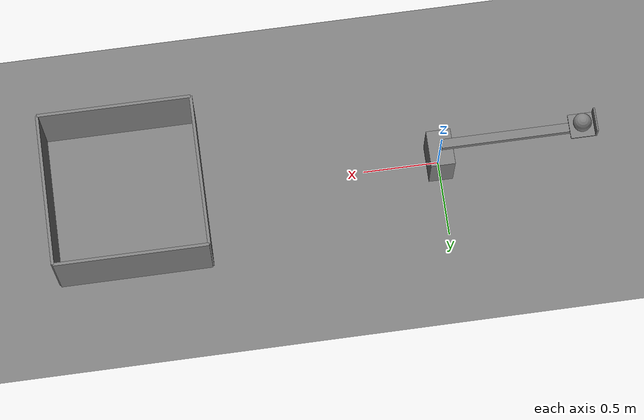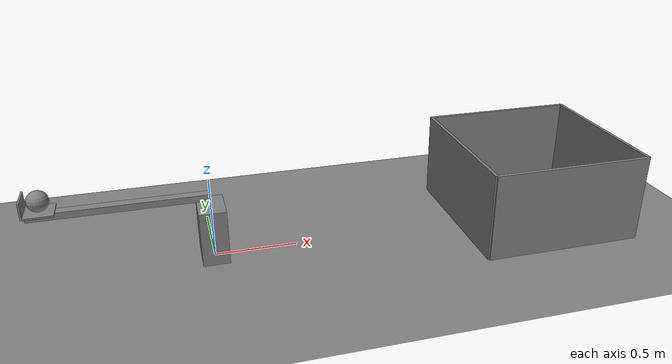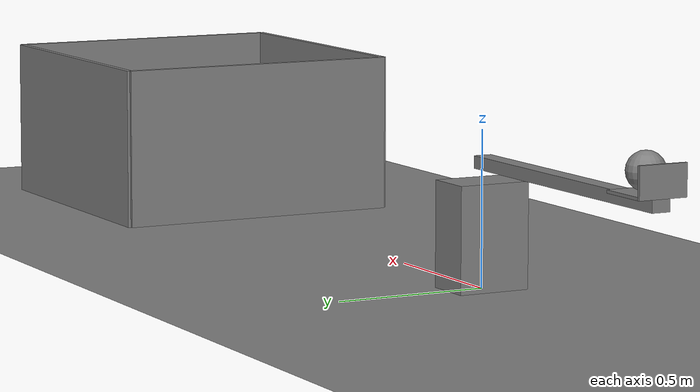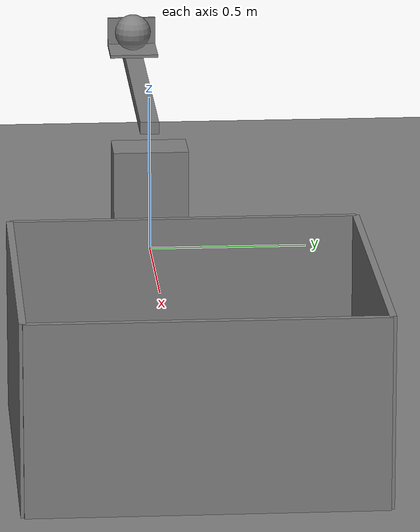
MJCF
<mujoco model="catapult_fixture">
  <option timestep="0.002"/>
  <worldbody>
    <geom name="floor" type="plane" size="8 8 0.1"/>
    <geom name="catapult_base" type="box" pos="0 0 0.170" size="0.08 0.12 0.170"/>
    <body name="catapult_arm" pos="0 0 0.4">
      <joint name="catapult_hinge" type="hinge" axis="0 1 0" limited="true" range="0 55" stiffness="3.3" springref="150" damping="0.05" armature="0.01"/>
      <geom name="catapult_beam" type="box" pos="-0.500 0 0" size="0.500 0.03 0.02" mass="0.3"/>
      <geom name="catapult_cup_floor" type="box" pos="-0.920 0 0.025" size="0.08 0.08 0.005" mass="0.02"/>
      <geom name="catapult_cup_back" type="box" pos="-1.005 0 0.07" size="0.005 0.08 0.05" mass="0.01"/>
    </body>
    <body name="ball" pos="-0.920 0 0.4895">
      <freejoint/>
      <geom name="ball" type="sphere" size="0.06" mass="0.15" condim="6" friction="0.8 0.01 0.004" solref="0.01 1"/>
    </body>
    <body name="bucket" pos="2.072321798 0 0.275">
      <geom name="bucket_base" type="box" pos="0 0 -0.265" size="0.5 0.5 0.01" condim="6" friction="1 0.02 0.005" solref="0.01 1"/>
      <geom name="bucket_near" type="box" pos="-0.5 0 0" size="0.01 0.5 0.275" condim="6" friction="1 0.02 0.005" solref="0.01 1"/>
      <geom name="bucket_far" type="box" pos="0.5 0 0" size="0.01 0.5 0.275" condim="6" friction="1 0.02 0.005" solref="0.01 1"/>
      <geom name="bucket_left" type="box" pos="0 0.5 0" size="0.5 0.01 0.275" condim="6" friction="1 0.02 0.005" solref="0.01 1"/>
      <geom name="bucket_right" type="box" pos="0 -0.5 0" size="0.5 0.01 0.275" condim="6" friction="1 0.02 0.005" solref="0.01 1"/>
    </body>
  </worldbody>
  <keyframe>
    <key name="start" qpos="0 -0.920 0 0.4895 1 0 0 0" qvel="0 0 0 0 0 0 0"/>
  </keyframe>
</mujoco>
